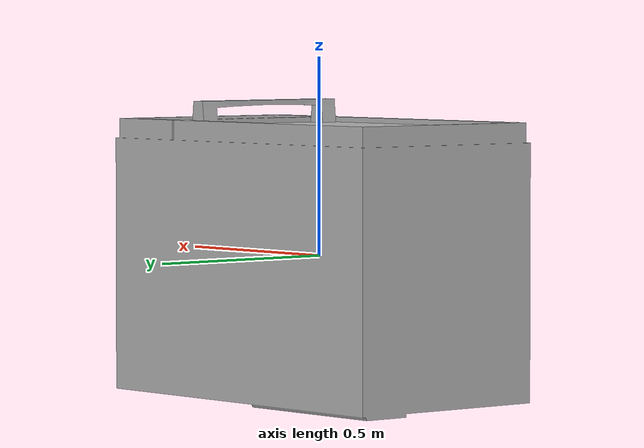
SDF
<?xml version="1.0"?>
<sdf version="1.6">
  <model name="microwave">

    <static>true</static>

    <link name="microwave_link">

      <visual name="visual">
        <geometry>
          <mesh>
            <uri>model://microwave/meshes/result.dae</uri>
              <pose>0 0 0.2 0 0 0</pose>
            <scale>2 2 2</scale>
          </mesh>
        </geometry>

      </visual>

    </link>

  </model>
</sdf>
